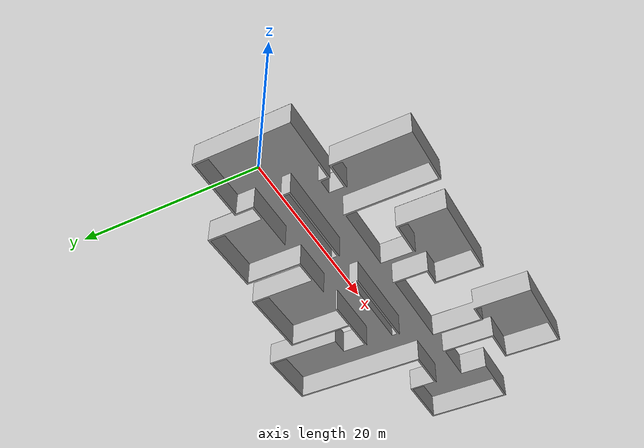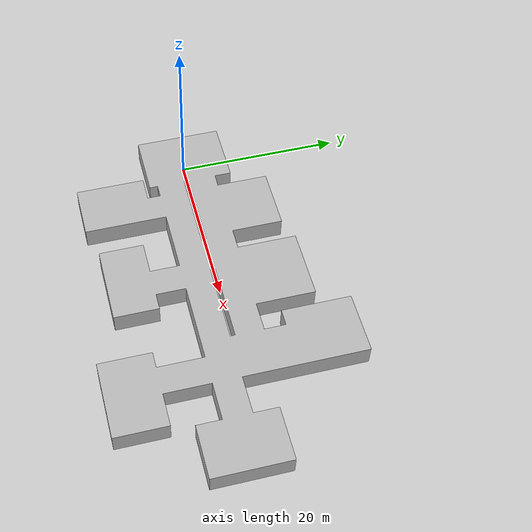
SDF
<?xml version="1.0"?>
<sdf version="1.6">
 <model name="2dmap">
   <pose>0 0 0 0 0 0</pose>
   <static>true</static>
   <link name="link">
     <collision name="collision">
       <geometry>
         <mesh>
           <scale>1 1 1</scale>
           <uri>model://2dmap/2d.dae</uri>
         </mesh>
       </geometry>
     </collision>
     <visual name="visual">
     <cast_shadows>0</cast_shadows>
       <geometry>
         <mesh>
           <scale>1 1 1</scale>
           <uri>model://2dmap/2d.dae</uri>
         </mesh>
       </geometry>
     </visual>
   </link>
 </model>
</sdf>
